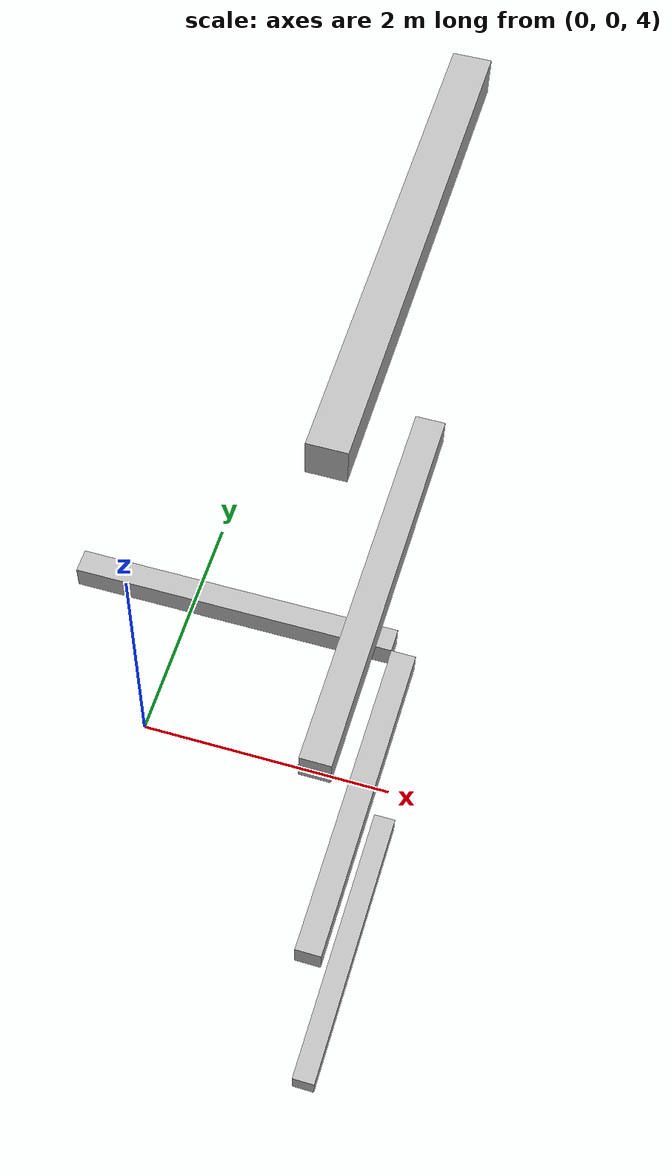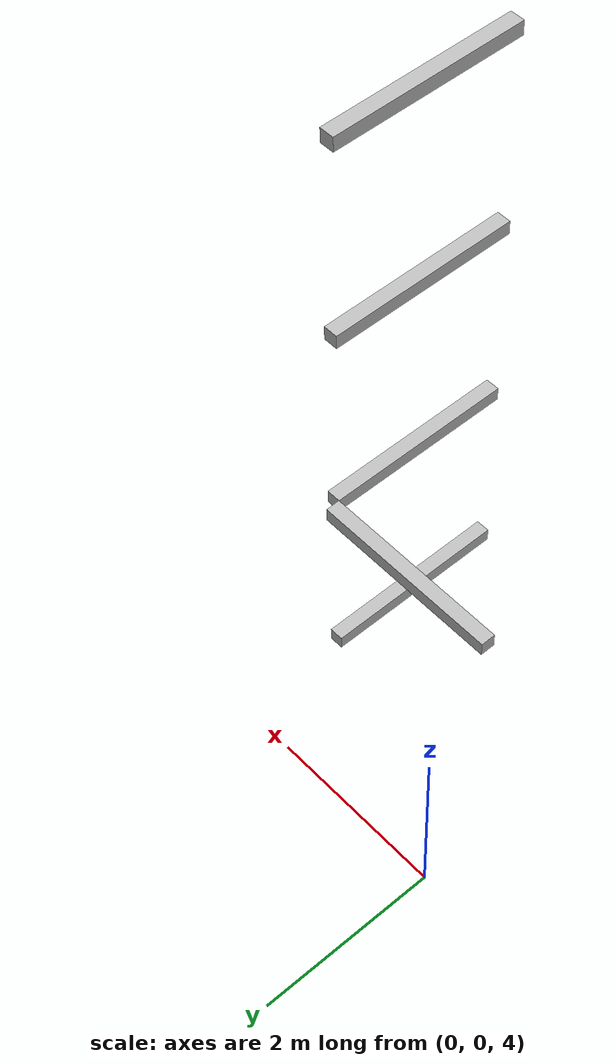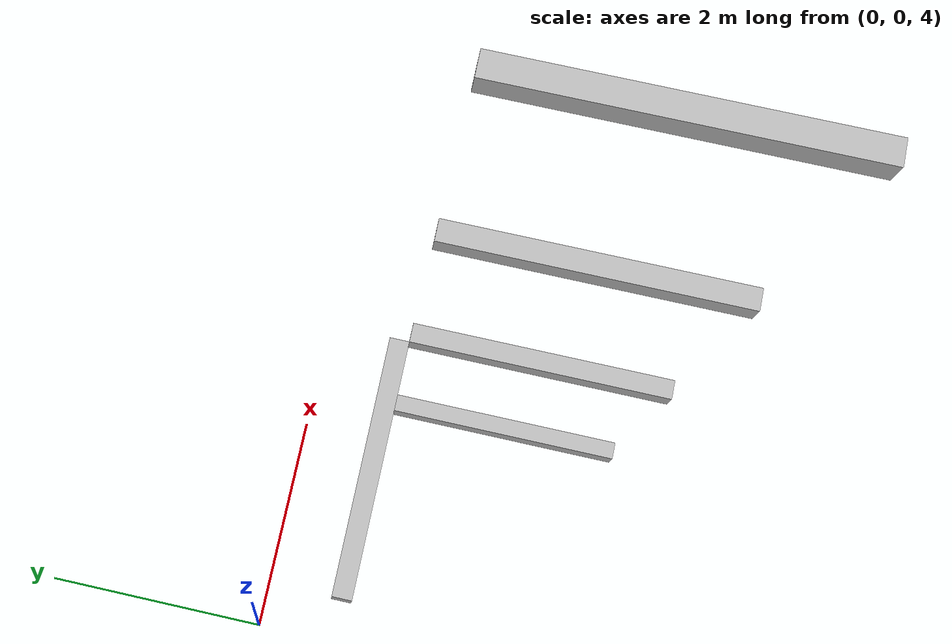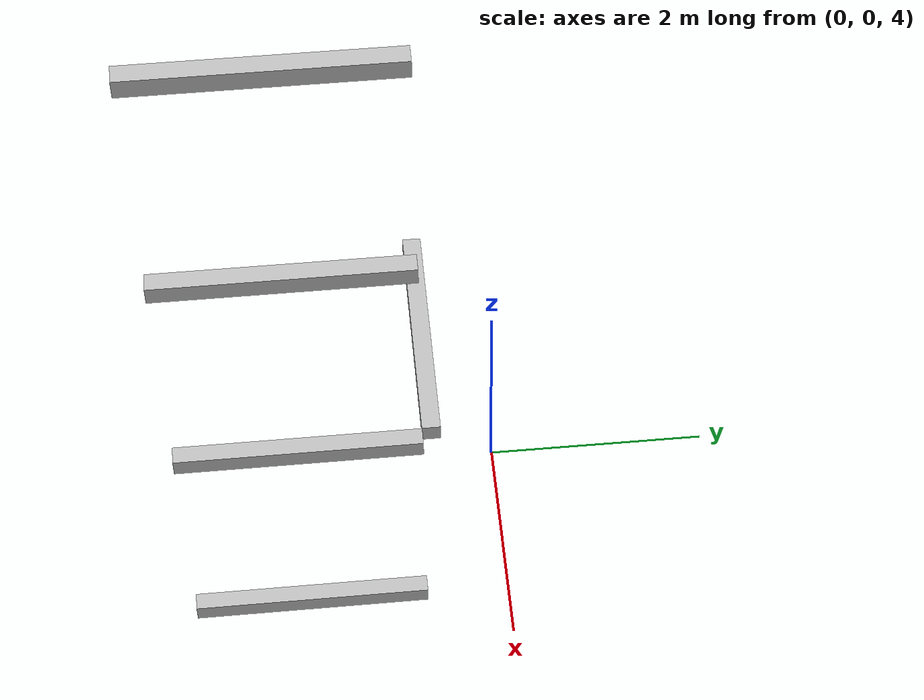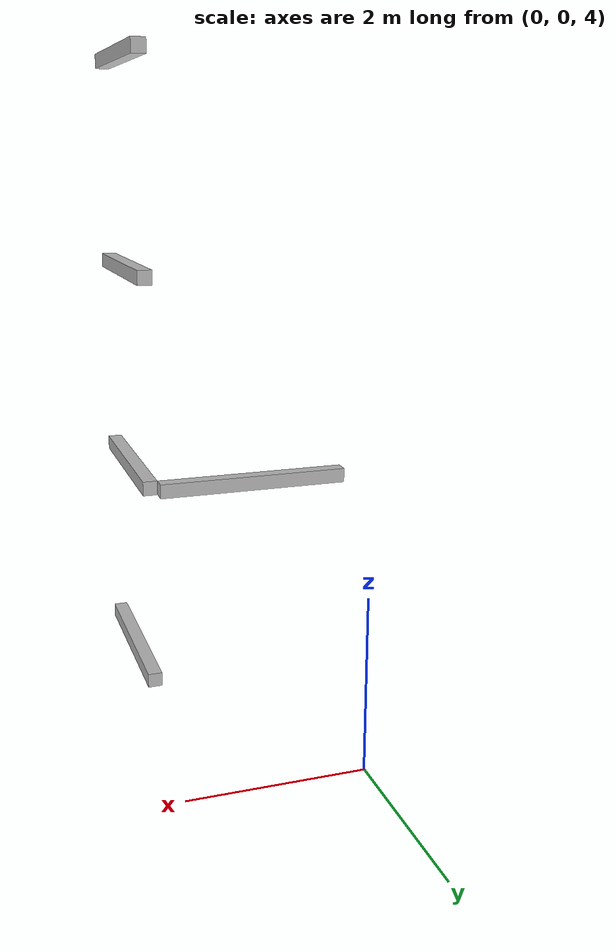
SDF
<sdf version="1.7">
 <world name="default">
  <model name="orthogonal_747_2.000.15_TS">
   <static>1</static>
   <link name="y_link_3_1_4">
    <inertial>
     <mass>1</mass>
     <inertia>
      <ixx>0.166667</ixx>
      <ixy>0</ixy>
      <ixz>0</ixz>
      <iyy>0.166667</iyy>
      <iyz>0</iyz>
      <izz>0.166667</izz>
     </inertia>
    </inertial>
    <pose>8.6 3.225 7.525 0 -0 0</pose>
    <visual name="visual_0">
     <laser_retro>2871</laser_retro>
     <geometry><box><size>0.15 1e-06 0.15</size></box></geometry>
     <material>
      <script><name>Gazebo/Grey</name><uri>file://media/materials/scripts/gazebo.material</uri></script>
      <shader type="pixel"><normal_map>__default__</normal_map></shader>
      <ambient>0.678 0.498 0.659 1</ambient>
      <diffuse>0.7 0.7 0.7 1</diffuse>
      <specular>0.01 0.01 0.01 1</specular>
      <emissive>0 0 0 1</emissive>
     </material>
     <pose>0 -1 0 0 -0 0</pose>
     <transparency>1</transparency>
    </visual>
    <visual name="visual_1">
     <laser_retro>2872</laser_retro>
     <geometry><box><size>0.15 1e-06 0.15</size></box></geometry>
     <material>
      <script><name>Gazebo/Grey</name><uri>file://media/materials/scripts/gazebo.material</uri></script>
      <shader type="pixel"><normal_map>__default__</normal_map></shader>
      <ambient>0.447 0.624 0.812 1</ambient>
      <diffuse>0.7 0.7 0.7 1</diffuse>
      <specular>0.01 0.01 0.01 1</specular>
      <emissive>0 0 0 1</emissive>
     </material>
     <pose>0 1 0 0 -0 0</pose>
     <transparency>1</transparency>
    </visual>
    <visual name="visual_2">
     <laser_retro>2873</laser_retro>
     <geometry><box><size>0.15 2 1e-06</size></box></geometry>
     <material>
      <script><name>Gazebo/Grey</name><uri>file://media/materials/scripts/gazebo.material</uri></script>
      <shader type="pixel"><normal_map>__default__</normal_map></shader>
      <ambient>0.988 0.686 0.243 1</ambient>
      <diffuse>0.7 0.7 0.7 1</diffuse>
      <specular>0.01 0.01 0.01 1</specular>
      <emissive>0 0 0 1</emissive>
     </material>
     <pose>0 0 -0.075 0 -0 0</pose>
     <transparency>1</transparency>
    </visual>
    <visual name="visual_3">
     <laser_retro>2874</laser_retro>
     <geometry><box><size>1e-06 2 0.15</size></box></geometry>
     <material>
      <script><name>Gazebo/Grey</name><uri>file://media/materials/scripts/gazebo.material</uri></script>
      <shader type="pixel"><normal_map>__default__</normal_map></shader>
      <ambient>0.988 0.914 0.31 1</ambient>
      <diffuse>0.7 0.7 0.7 1</diffuse>
      <specular>0.01 0.01 0.01 1</specular>
      <emissive>0 0 0 1</emissive>
     </material>
     <pose>0.075 0 0 0 -0 0</pose>
     <transparency>1</transparency>
    </visual>
    <visual name="visual_4">
     <laser_retro>2875</laser_retro>
     <geometry><box><size>0.15 2 1e-06</size></box></geometry>
     <material>
      <script><name>Gazebo/Grey</name><uri>file://media/materials/scripts/gazebo.material</uri></script>
      <shader type="pixel"><normal_map>__default__</normal_map></shader>
      <ambient>0.937 0.161 0.161 1</ambient>
      <diffuse>0.7 0.7 0.7 1</diffuse>
      <specular>0.01 0.01 0.01 1</specular>
      <emissive>0 0 0 1</emissive>
     </material>
     <pose>0 0 0.075 0 -0 0</pose>
     <transparency>1</transparency>
    </visual>
    <visual name="visual_5">
     <laser_retro>2876</laser_retro>
     <geometry><box><size>1e-06 2 0.15</size></box></geometry>
     <material>
      <script><name>Gazebo/Grey</name><uri>file://media/materials/scripts/gazebo.material</uri></script>
      <shader type="pixel"><normal_map>__default__</normal_map></shader>
      <ambient>0.541 0.886 0.204 1</ambient>
      <diffuse>0.7 0.7 0.7 1</diffuse>
      <specular>0.01 0.01 0.01 1</specular>
      <emissive>0 0 0 1</emissive>
     </material>
     <pose>-0.075 0 0 0 -0 0</pose>
     <transparency>1</transparency>
    </visual>
    <visual name="visual_texture">
     <geometry><box><size>0.149985 1.9998 0.149985</size></box></geometry>
     <material>
      <script>
       <uri>model://BASE_MODELS/simple_block_v2_textured/materials/scripts</uri>
       <uri>model://BASE_MODELS/simple_block_v2_textured/materials/textures</uri>
       <name>metal</name>
      </script>
     </material>
     <laser_retro>2877</laser_retro>
    </visual>
    <collision name="collision">
     <geometry><box><size>0.15 2 0.15</size></box></geometry>
     <surface>
      <friction>
       <ode><mu>1</mu><mu2>1</mu2><fdir1>0 0 0</fdir1><slip1>0</slip1><slip2>0</slip2></ode>
       <torsional>
        <coefficient>1</coefficient>
        <patch_radius>0</patch_radius>
        <surface_radius>0</surface_radius>
        <use_patch_radius>1</use_patch_radius>
        <ode><slip>0</slip></ode>
       </torsional>
      </friction>
      <bounce><restitution_coefficient>0</restitution_coefficient><threshold>1e+06</threshold></bounce>
      <contact>
       <collide_without_contact>0</collide_without_contact>
       <collide_without_contact_bitmask>1</collide_without_contact_bitmask>
       <collide_bitmask>1</collide_bitmask>
       <ode>
        <soft_cfm>0</soft_cfm>
        <soft_erp>0.2</soft_erp>
        <kp>1e+13</kp>
        <kd>1</kd>
        <max_vel>0.01</max_vel>
        <min_depth>0</min_depth>
       </ode>
       <bullet>
        <split_impulse>1</split_impulse>
        <split_impulse_penetration_threshold>-0.01</split_impulse_penetration_threshold>
        <soft_cfm>0</soft_cfm>
        <soft_erp>0.2</soft_erp>
        <kp>1e+13</kp>
        <kd>1</kd>
       </bullet>
      </contact>
     </surface>
    </collision>
   </link>
   <link name="y_link_4_1_4">
    <inertial>
     <mass>1</mass>
     <inertia>
      <ixx>0.166667</ixx>
      <ixy>0</ixy>
      <ixz>0</ixz>
      <iyy>0.166667</iyy>
      <iyz>0</iyz>
      <izz>0.166667</izz>
     </inertia>
    </inertial>
    <pose>8.6 3.225 9.675 0 -0 0</pose>
    <visual name="visual_0">
     <laser_retro>3774</laser_retro>
     <geometry><box><size>0.15 1e-06 0.15</size></box></geometry>
     <material>
      <script><name>Gazebo/Grey</name><uri>file://media/materials/scripts/gazebo.material</uri></script>
      <shader type="pixel"><normal_map>__default__</normal_map></shader>
      <ambient>0.678 0.498 0.659 1</ambient>
      <diffuse>0.7 0.7 0.7 1</diffuse>
      <specular>0.01 0.01 0.01 1</specular>
      <emissive>0 0 0 1</emissive>
     </material>
     <pose>0 -1 0 0 -0 0</pose>
     <transparency>1</transparency>
    </visual>
    <visual name="visual_1">
     <laser_retro>3775</laser_retro>
     <geometry><box><size>0.15 1e-06 0.15</size></box></geometry>
     <material>
      <script><name>Gazebo/Grey</name><uri>file://media/materials/scripts/gazebo.material</uri></script>
      <shader type="pixel"><normal_map>__default__</normal_map></shader>
      <ambient>0.447 0.624 0.812 1</ambient>
      <diffuse>0.7 0.7 0.7 1</diffuse>
      <specular>0.01 0.01 0.01 1</specular>
      <emissive>0 0 0 1</emissive>
     </material>
     <pose>0 1 0 0 -0 0</pose>
     <transparency>1</transparency>
    </visual>
    <visual name="visual_2">
     <laser_retro>3776</laser_retro>
     <geometry><box><size>0.15 2 1e-06</size></box></geometry>
     <material>
      <script><name>Gazebo/Grey</name><uri>file://media/materials/scripts/gazebo.material</uri></script>
      <shader type="pixel"><normal_map>__default__</normal_map></shader>
      <ambient>0.988 0.686 0.243 1</ambient>
      <diffuse>0.7 0.7 0.7 1</diffuse>
      <specular>0.01 0.01 0.01 1</specular>
      <emissive>0 0 0 1</emissive>
     </material>
     <pose>0 0 -0.075 0 -0 0</pose>
     <transparency>1</transparency>
    </visual>
    <visual name="visual_3">
     <laser_retro>3777</laser_retro>
     <geometry><box><size>1e-06 2 0.15</size></box></geometry>
     <material>
      <script><name>Gazebo/Grey</name><uri>file://media/materials/scripts/gazebo.material</uri></script>
      <shader type="pixel"><normal_map>__default__</normal_map></shader>
      <ambient>0.988 0.914 0.31 1</ambient>
      <diffuse>0.7 0.7 0.7 1</diffuse>
      <specular>0.01 0.01 0.01 1</specular>
      <emissive>0 0 0 1</emissive>
     </material>
     <pose>0.075 0 0 0 -0 0</pose>
     <transparency>1</transparency>
    </visual>
    <visual name="visual_4">
     <laser_retro>3778</laser_retro>
     <geometry><box><size>0.15 2 1e-06</size></box></geometry>
     <material>
      <script><name>Gazebo/Grey</name><uri>file://media/materials/scripts/gazebo.material</uri></script>
      <shader type="pixel"><normal_map>__default__</normal_map></shader>
      <ambient>0.937 0.161 0.161 1</ambient>
      <diffuse>0.7 0.7 0.7 1</diffuse>
      <specular>0.01 0.01 0.01 1</specular>
      <emissive>0 0 0 1</emissive>
     </material>
     <pose>0 0 0.075 0 -0 0</pose>
     <transparency>1</transparency>
    </visual>
    <visual name="visual_5">
     <laser_retro>3779</laser_retro>
     <geometry><box><size>1e-06 2 0.15</size></box></geometry>
     <material>
      <script><name>Gazebo/Grey</name><uri>file://media/materials/scripts/gazebo.material</uri></script>
      <shader type="pixel"><normal_map>__default__</normal_map></shader>
      <ambient>0.541 0.886 0.204 1</ambient>
      <diffuse>0.7 0.7 0.7 1</diffuse>
      <specular>0.01 0.01 0.01 1</specular>
      <emissive>0 0 0 1</emissive>
     </material>
     <pose>-0.075 0 0 0 -0 0</pose>
     <transparency>1</transparency>
    </visual>
    <visual name="visual_texture">
     <geometry><box><size>0.149985 1.9998 0.149985</size></box></geometry>
     <material>
      <script>
       <uri>model://BASE_MODELS/simple_block_v2_textured/materials/scripts</uri>
       <uri>model://BASE_MODELS/simple_block_v2_textured/materials/textures</uri>
       <name>metal</name>
      </script>
     </material>
     <laser_retro>3780</laser_retro>
    </visual>
    <collision name="collision">
     <geometry><box><size>0.15 2 0.15</size></box></geometry>
     <surface>
      <friction>
       <ode><mu>1</mu><mu2>1</mu2><fdir1>0 0 0</fdir1><slip1>0</slip1><slip2>0</slip2></ode>
       <torsional>
        <coefficient>1</coefficient>
        <patch_radius>0</patch_radius>
        <surface_radius>0</surface_radius>
        <use_patch_radius>1</use_patch_radius>
        <ode><slip>0</slip></ode>
       </torsional>
      </friction>
      <bounce><restitution_coefficient>0</restitution_coefficient><threshold>1e+06</threshold></bounce>
      <contact>
       <collide_without_contact>0</collide_without_contact>
       <collide_without_contact_bitmask>1</collide_without_contact_bitmask>
       <collide_bitmask>1</collide_bitmask>
       <ode>
        <soft_cfm>0</soft_cfm>
        <soft_erp>0.2</soft_erp>
        <kp>1e+13</kp>
        <kd>1</kd>
        <max_vel>0.01</max_vel>
        <min_depth>0</min_depth>
       </ode>
       <bullet>
        <split_impulse>1</split_impulse>
        <split_impulse_penetration_threshold>-0.01</split_impulse_penetration_threshold>
        <soft_cfm>0</soft_cfm>
        <soft_erp>0.2</soft_erp>
        <kp>1e+13</kp>
        <kd>1</kd>
       </bullet>
      </contact>
     </surface>
    </collision>
   </link>
   <link name="x_link_4_2_3">
    <inertial>
     <mass>1</mass>
     <inertia>
      <ixx>0.166667</ixx>
      <ixy>0</ixy>
      <ixz>0</ixz>
      <iyy>0.166667</iyy>
      <iyz>0</iyz>
      <izz>0.166667</izz>
     </inertia>
    </inertial>
    <pose>7.525 4.3 9.675 0 -0 0</pose>
    <visual name="visual_0">
     <laser_retro>3921</laser_retro>
     <geometry><box><size>2 1e-06 0.15</size></box></geometry>
     <material>
      <script><name>Gazebo/Grey</name><uri>file://media/materials/scripts/gazebo.material</uri></script>
      <shader type="pixel"><normal_map>__default__</normal_map></shader>
      <ambient>0.678 0.498 0.659 1</ambient>
      <diffuse>0.7 0.7 0.7 1</diffuse>
      <specular>0.01 0.01 0.01 1</specular>
      <emissive>0 0 0 1</emissive>
     </material>
     <pose>0 -0.075 0 0 -0 0</pose>
     <transparency>1</transparency>
    </visual>
    <visual name="visual_1">
     <laser_retro>3922</laser_retro>
     <geometry><box><size>2 1e-06 0.15</size></box></geometry>
     <material>
      <script><name>Gazebo/Grey</name><uri>file://media/materials/scripts/gazebo.material</uri></script>
      <shader type="pixel"><normal_map>__default__</normal_map></shader>
      <ambient>0.447 0.624 0.812 1</ambient>
      <diffuse>0.7 0.7 0.7 1</diffuse>
      <specular>0.01 0.01 0.01 1</specular>
      <emissive>0 0 0 1</emissive>
     </material>
     <pose>0 0.075 0 0 -0 0</pose>
     <transparency>1</transparency>
    </visual>
    <visual name="visual_2">
     <laser_retro>3923</laser_retro>
     <geometry><box><size>2 0.15 1e-06</size></box></geometry>
     <material>
      <script><name>Gazebo/Grey</name><uri>file://media/materials/scripts/gazebo.material</uri></script>
      <shader type="pixel"><normal_map>__default__</normal_map></shader>
      <ambient>0.988 0.686 0.243 1</ambient>
      <diffuse>0.7 0.7 0.7 1</diffuse>
      <specular>0.01 0.01 0.01 1</specular>
      <emissive>0 0 0 1</emissive>
     </material>
     <pose>0 0 -0.075 0 -0 0</pose>
     <transparency>1</transparency>
    </visual>
    <visual name="visual_3">
     <laser_retro>3924</laser_retro>
     <geometry><box><size>1e-06 0.15 0.15</size></box></geometry>
     <material>
      <script><name>Gazebo/Grey</name><uri>file://media/materials/scripts/gazebo.material</uri></script>
      <shader type="pixel"><normal_map>__default__</normal_map></shader>
      <ambient>0.988 0.914 0.31 1</ambient>
      <diffuse>0.7 0.7 0.7 1</diffuse>
      <specular>0.01 0.01 0.01 1</specular>
      <emissive>0 0 0 1</emissive>
     </material>
     <pose>1 0 0 0 -0 0</pose>
     <transparency>1</transparency>
    </visual>
    <visual name="visual_4">
     <laser_retro>3925</laser_retro>
     <geometry><box><size>2 0.15 1e-06</size></box></geometry>
     <material>
      <script><name>Gazebo/Grey</name><uri>file://media/materials/scripts/gazebo.material</uri></script>
      <shader type="pixel"><normal_map>__default__</normal_map></shader>
      <ambient>0.937 0.161 0.161 1</ambient>
      <diffuse>0.7 0.7 0.7 1</diffuse>
      <specular>0.01 0.01 0.01 1</specular>
      <emissive>0 0 0 1</emissive>
     </material>
     <pose>0 0 0.075 0 -0 0</pose>
     <transparency>1</transparency>
    </visual>
    <visual name="visual_5">
     <laser_retro>3926</laser_retro>
     <geometry><box><size>1e-06 0.15 0.15</size></box></geometry>
     <material>
      <script><name>Gazebo/Grey</name><uri>file://media/materials/scripts/gazebo.material</uri></script>
      <shader type="pixel"><normal_map>__default__</normal_map></shader>
      <ambient>0.541 0.886 0.204 1</ambient>
      <diffuse>0.7 0.7 0.7 1</diffuse>
      <specular>0.01 0.01 0.01 1</specular>
      <emissive>0 0 0 1</emissive>
     </material>
     <pose>-1 0 0 0 -0 0</pose>
     <transparency>1</transparency>
    </visual>
    <visual name="visual_texture">
     <geometry><box><size>1.9998 0.149985 0.149985</size></box></geometry>
     <material>
      <script>
       <uri>model://BASE_MODELS/simple_block_v2_textured/materials/scripts</uri>
       <uri>model://BASE_MODELS/simple_block_v2_textured/materials/textures</uri>
       <name>metal</name>
      </script>
     </material>
     <laser_retro>3927</laser_retro>
    </visual>
    <collision name="collision">
     <geometry><box><size>2 0.15 0.15</size></box></geometry>
     <surface>
      <friction>
       <ode><mu>1</mu><mu2>1</mu2><fdir1>0 0 0</fdir1><slip1>0</slip1><slip2>0</slip2></ode>
       <torsional>
        <coefficient>1</coefficient>
        <patch_radius>0</patch_radius>
        <surface_radius>0</surface_radius>
        <use_patch_radius>1</use_patch_radius>
        <ode><slip>0</slip></ode>
       </torsional>
      </friction>
      <bounce><restitution_coefficient>0</restitution_coefficient><threshold>1e+06</threshold></bounce>
      <contact>
       <collide_without_contact>0</collide_without_contact>
       <collide_without_contact_bitmask>1</collide_without_contact_bitmask>
       <collide_bitmask>1</collide_bitmask>
       <ode>
        <soft_cfm>0</soft_cfm>
        <soft_erp>0.2</soft_erp>
        <kp>1e+13</kp>
        <kd>1</kd>
        <max_vel>0.01</max_vel>
        <min_depth>0</min_depth>
       </ode>
       <bullet>
        <split_impulse>1</split_impulse>
        <split_impulse_penetration_threshold>-0.01</split_impulse_penetration_threshold>
        <soft_cfm>0</soft_cfm>
        <soft_erp>0.2</soft_erp>
        <kp>1e+13</kp>
        <kd>1</kd>
       </bullet>
      </contact>
     </surface>
    </collision>
   </link>
   <link name="y_link_5_1_4">
    <inertial>
     <mass>1</mass>
     <inertia>
      <ixx>0.166667</ixx>
      <ixy>0</ixy>
      <ixz>0</ixz>
      <iyy>0.166667</iyy>
      <iyz>0</iyz>
      <izz>0.166667</izz>
     </inertia>
    </inertial>
    <pose>8.6 3.225 11.825 0 -0 0</pose>
    <visual name="visual_0">
     <laser_retro>4677</laser_retro>
     <geometry><box><size>0.15 1e-06 0.15</size></box></geometry>
     <material>
      <script><name>Gazebo/Grey</name><uri>file://media/materials/scripts/gazebo.material</uri></script>
      <shader type="pixel"><normal_map>__default__</normal_map></shader>
      <ambient>0.678 0.498 0.659 1</ambient>
      <diffuse>0.7 0.7 0.7 1</diffuse>
      <specular>0.01 0.01 0.01 1</specular>
      <emissive>0 0 0 1</emissive>
     </material>
     <pose>0 -1 0 0 -0 0</pose>
     <transparency>1</transparency>
    </visual>
    <visual name="visual_1">
     <laser_retro>4678</laser_retro>
     <geometry><box><size>0.15 1e-06 0.15</size></box></geometry>
     <material>
      <script><name>Gazebo/Grey</name><uri>file://media/materials/scripts/gazebo.material</uri></script>
      <shader type="pixel"><normal_map>__default__</normal_map></shader>
      <ambient>0.447 0.624 0.812 1</ambient>
      <diffuse>0.7 0.7 0.7 1</diffuse>
      <specular>0.01 0.01 0.01 1</specular>
      <emissive>0 0 0 1</emissive>
     </material>
     <pose>0 1 0 0 -0 0</pose>
     <transparency>1</transparency>
    </visual>
    <visual name="visual_2">
     <laser_retro>4679</laser_retro>
     <geometry><box><size>0.15 2 1e-06</size></box></geometry>
     <material>
      <script><name>Gazebo/Grey</name><uri>file://media/materials/scripts/gazebo.material</uri></script>
      <shader type="pixel"><normal_map>__default__</normal_map></shader>
      <ambient>0.988 0.686 0.243 1</ambient>
      <diffuse>0.7 0.7 0.7 1</diffuse>
      <specular>0.01 0.01 0.01 1</specular>
      <emissive>0 0 0 1</emissive>
     </material>
     <pose>0 0 -0.075 0 -0 0</pose>
     <transparency>1</transparency>
    </visual>
    <visual name="visual_3">
     <laser_retro>4680</laser_retro>
     <geometry><box><size>1e-06 2 0.15</size></box></geometry>
     <material>
      <script><name>Gazebo/Grey</name><uri>file://media/materials/scripts/gazebo.material</uri></script>
      <shader type="pixel"><normal_map>__default__</normal_map></shader>
      <ambient>0.988 0.914 0.31 1</ambient>
      <diffuse>0.7 0.7 0.7 1</diffuse>
      <specular>0.01 0.01 0.01 1</specular>
      <emissive>0 0 0 1</emissive>
     </material>
     <pose>0.075 0 0 0 -0 0</pose>
     <transparency>1</transparency>
    </visual>
    <visual name="visual_4">
     <laser_retro>4681</laser_retro>
     <geometry><box><size>0.15 2 1e-06</size></box></geometry>
     <material>
      <script><name>Gazebo/Grey</name><uri>file://media/materials/scripts/gazebo.material</uri></script>
      <shader type="pixel"><normal_map>__default__</normal_map></shader>
      <ambient>0.937 0.161 0.161 1</ambient>
      <diffuse>0.7 0.7 0.7 1</diffuse>
      <specular>0.01 0.01 0.01 1</specular>
      <emissive>0 0 0 1</emissive>
     </material>
     <pose>0 0 0.075 0 -0 0</pose>
     <transparency>1</transparency>
    </visual>
    <visual name="visual_5">
     <laser_retro>4682</laser_retro>
     <geometry><box><size>1e-06 2 0.15</size></box></geometry>
     <material>
      <script><name>Gazebo/Grey</name><uri>file://media/materials/scripts/gazebo.material</uri></script>
      <shader type="pixel"><normal_map>__default__</normal_map></shader>
      <ambient>0.541 0.886 0.204 1</ambient>
      <diffuse>0.7 0.7 0.7 1</diffuse>
      <specular>0.01 0.01 0.01 1</specular>
      <emissive>0 0 0 1</emissive>
     </material>
     <pose>-0.075 0 0 0 -0 0</pose>
     <transparency>1</transparency>
    </visual>
    <visual name="visual_texture">
     <geometry><box><size>0.149985 1.9998 0.149985</size></box></geometry>
     <material>
      <script>
       <uri>model://BASE_MODELS/simple_block_v2_textured/materials/scripts</uri>
       <uri>model://BASE_MODELS/simple_block_v2_textured/materials/textures</uri>
       <name>metal</name>
      </script>
     </material>
     <laser_retro>4683</laser_retro>
    </visual>
    <collision name="collision">
     <geometry><box><size>0.15 2 0.15</size></box></geometry>
     <surface>
      <friction>
       <ode><mu>1</mu><mu2>1</mu2><fdir1>0 0 0</fdir1><slip1>0</slip1><slip2>0</slip2></ode>
       <torsional>
        <coefficient>1</coefficient>
        <patch_radius>0</patch_radius>
        <surface_radius>0</surface_radius>
        <use_patch_radius>1</use_patch_radius>
        <ode><slip>0</slip></ode>
       </torsional>
      </friction>
      <bounce><restitution_coefficient>0</restitution_coefficient><threshold>1e+06</threshold></bounce>
      <contact>
       <collide_without_contact>0</collide_without_contact>
       <collide_without_contact_bitmask>1</collide_without_contact_bitmask>
       <collide_bitmask>1</collide_bitmask>
       <ode>
        <soft_cfm>0</soft_cfm>
        <soft_erp>0.2</soft_erp>
        <kp>1e+13</kp>
        <kd>1</kd>
        <max_vel>0.01</max_vel>
        <min_depth>0</min_depth>
       </ode>
       <bullet>
        <split_impulse>1</split_impulse>
        <split_impulse_penetration_threshold>-0.01</split_impulse_penetration_threshold>
        <soft_cfm>0</soft_cfm>
        <soft_erp>0.2</soft_erp>
        <kp>1e+13</kp>
        <kd>1</kd>
       </bullet>
      </contact>
     </surface>
    </collision>
   </link>
   <link name="y_link_6_1_4">
    <inertial>
     <mass>1</mass>
     <inertia>
      <ixx>0.166667</ixx>
      <ixy>0</ixy>
      <ixz>0</ixz>
      <iyy>0.166667</iyy>
      <iyz>0</iyz>
      <izz>0.166667</izz>
     </inertia>
    </inertial>
    <pose>8.6 3.225 13.975 0 -0 0</pose>
    <visual name="visual_0">
     <laser_retro>5601</laser_retro>
     <geometry><box><size>0.15 1e-06 0.15</size></box></geometry>
     <material>
      <script><name>Gazebo/Grey</name><uri>file://media/materials/scripts/gazebo.material</uri></script>
      <shader type="pixel"><normal_map>__default__</normal_map></shader>
      <ambient>0.678 0.498 0.659 1</ambient>
      <diffuse>0.7 0.7 0.7 1</diffuse>
      <specular>0.01 0.01 0.01 1</specular>
      <emissive>0 0 0 1</emissive>
     </material>
     <pose>0 -1 0 0 -0 0</pose>
     <transparency>1</transparency>
    </visual>
    <visual name="visual_1">
     <laser_retro>5602</laser_retro>
     <geometry><box><size>0.15 1e-06 0.15</size></box></geometry>
     <material>
      <script><name>Gazebo/Grey</name><uri>file://media/materials/scripts/gazebo.material</uri></script>
      <shader type="pixel"><normal_map>__default__</normal_map></shader>
      <ambient>0.447 0.624 0.812 1</ambient>
      <diffuse>0.7 0.7 0.7 1</diffuse>
      <specular>0.01 0.01 0.01 1</specular>
      <emissive>0 0 0 1</emissive>
     </material>
     <pose>0 1 0 0 -0 0</pose>
     <transparency>1</transparency>
    </visual>
    <visual name="visual_2">
     <laser_retro>5603</laser_retro>
     <geometry><box><size>0.15 2 1e-06</size></box></geometry>
     <material>
      <script><name>Gazebo/Grey</name><uri>file://media/materials/scripts/gazebo.material</uri></script>
      <shader type="pixel"><normal_map>__default__</normal_map></shader>
      <ambient>0.988 0.686 0.243 1</ambient>
      <diffuse>0.7 0.7 0.7 1</diffuse>
      <specular>0.01 0.01 0.01 1</specular>
      <emissive>0 0 0 1</emissive>
     </material>
     <pose>0 0 -0.075 0 -0 0</pose>
     <transparency>1</transparency>
    </visual>
    <visual name="visual_3">
     <laser_retro>5604</laser_retro>
     <geometry><box><size>1e-06 2 0.15</size></box></geometry>
     <material>
      <script><name>Gazebo/Grey</name><uri>file://media/materials/scripts/gazebo.material</uri></script>
      <shader type="pixel"><normal_map>__default__</normal_map></shader>
      <ambient>0.988 0.914 0.31 1</ambient>
      <diffuse>0.7 0.7 0.7 1</diffuse>
      <specular>0.01 0.01 0.01 1</specular>
      <emissive>0 0 0 1</emissive>
     </material>
     <pose>0.075 0 0 0 -0 0</pose>
     <transparency>1</transparency>
    </visual>
    <visual name="visual_4">
     <laser_retro>5605</laser_retro>
     <geometry><box><size>0.15 2 1e-06</size></box></geometry>
     <material>
      <script><name>Gazebo/Grey</name><uri>file://media/materials/scripts/gazebo.material</uri></script>
      <shader type="pixel"><normal_map>__default__</normal_map></shader>
      <ambient>0.937 0.161 0.161 1</ambient>
      <diffuse>0.7 0.7 0.7 1</diffuse>
      <specular>0.01 0.01 0.01 1</specular>
      <emissive>0 0 0 1</emissive>
     </material>
     <pose>0 0 0.075 0 -0 0</pose>
     <transparency>1</transparency>
    </visual>
    <visual name="visual_5">
     <laser_retro>5606</laser_retro>
     <geometry><box><size>1e-06 2 0.15</size></box></geometry>
     <material>
      <script><name>Gazebo/Grey</name><uri>file://media/materials/scripts/gazebo.material</uri></script>
      <shader type="pixel"><normal_map>__default__</normal_map></shader>
      <ambient>0.541 0.886 0.204 1</ambient>
      <diffuse>0.7 0.7 0.7 1</diffuse>
      <specular>0.01 0.01 0.01 1</specular>
      <emissive>0 0 0 1</emissive>
     </material>
     <pose>-0.075 0 0 0 -0 0</pose>
     <transparency>1</transparency>
    </visual>
    <visual name="visual_texture">
     <geometry><box><size>0.149985 1.9998 0.149985</size></box></geometry>
     <material>
      <script>
       <uri>model://BASE_MODELS/simple_block_v2_textured/materials/scripts</uri>
       <uri>model://BASE_MODELS/simple_block_v2_textured/materials/textures</uri>
       <name>metal</name>
      </script>
     </material>
     <laser_retro>5607</laser_retro>
    </visual>
    <collision name="collision">
     <geometry><box><size>0.15 2 0.15</size></box></geometry>
     <surface>
      <friction>
       <ode><mu>1</mu><mu2>1</mu2><fdir1>0 0 0</fdir1><slip1>0</slip1><slip2>0</slip2></ode>
       <torsional>
        <coefficient>1</coefficient>
        <patch_radius>0</patch_radius>
        <surface_radius>0</surface_radius>
        <use_patch_radius>1</use_patch_radius>
        <ode><slip>0</slip></ode>
       </torsional>
      </friction>
      <bounce><restitution_coefficient>0</restitution_coefficient><threshold>1e+06</threshold></bounce>
      <contact>
       <collide_without_contact>0</collide_without_contact>
       <collide_without_contact_bitmask>1</collide_without_contact_bitmask>
       <collide_bitmask>1</collide_bitmask>
       <ode>
        <soft_cfm>0</soft_cfm>
        <soft_erp>0.2</soft_erp>
        <kp>1e+13</kp>
        <kd>1</kd>
        <max_vel>0.01</max_vel>
        <min_depth>0</min_depth>
       </ode>
       <bullet>
        <split_impulse>1</split_impulse>
        <split_impulse_penetration_threshold>-0.01</split_impulse_penetration_threshold>
        <soft_cfm>0</soft_cfm>
        <soft_erp>0.2</soft_erp>
        <kp>1e+13</kp>
        <kd>1</kd>
       </bullet>
      </contact>
     </surface>
    </collision>
   </link>
   <pose>-6.47624 -5 -2.5 0 -0 0</pose>
  </model>
 </world>
</sdf>
